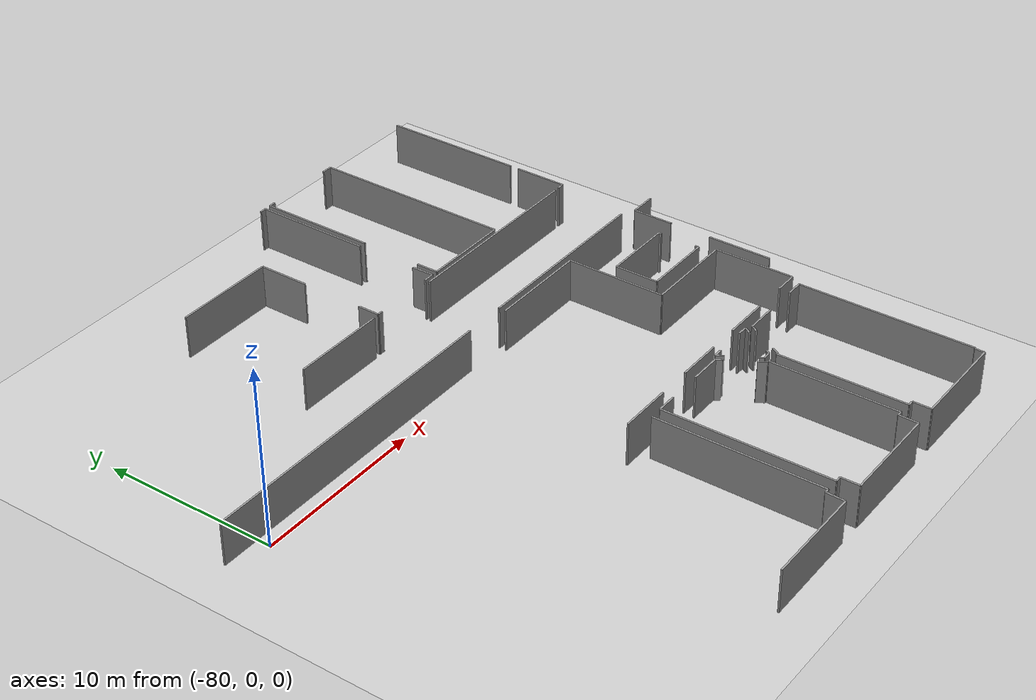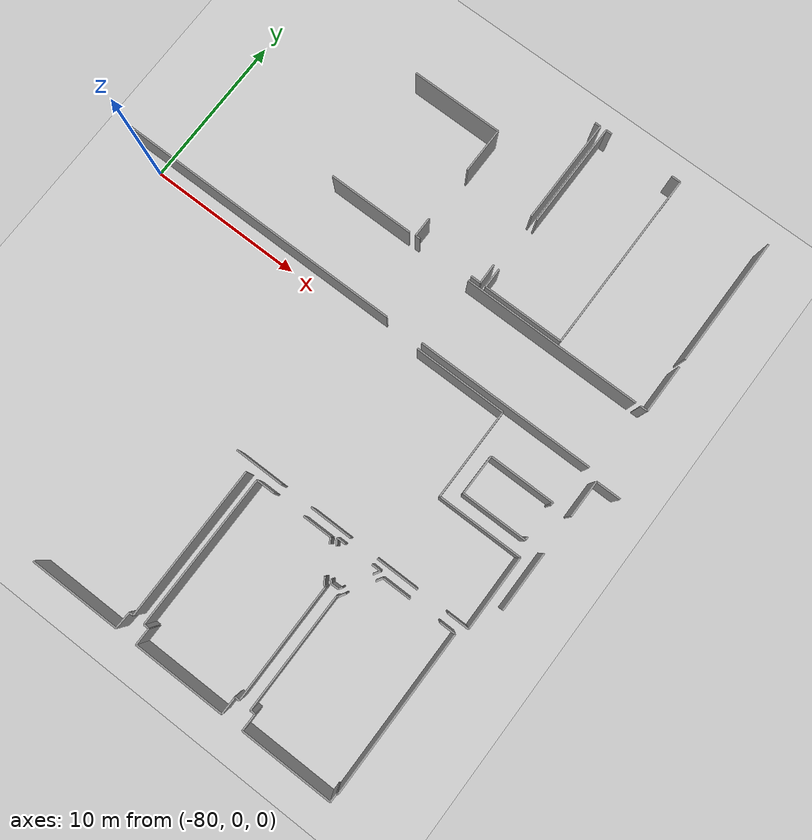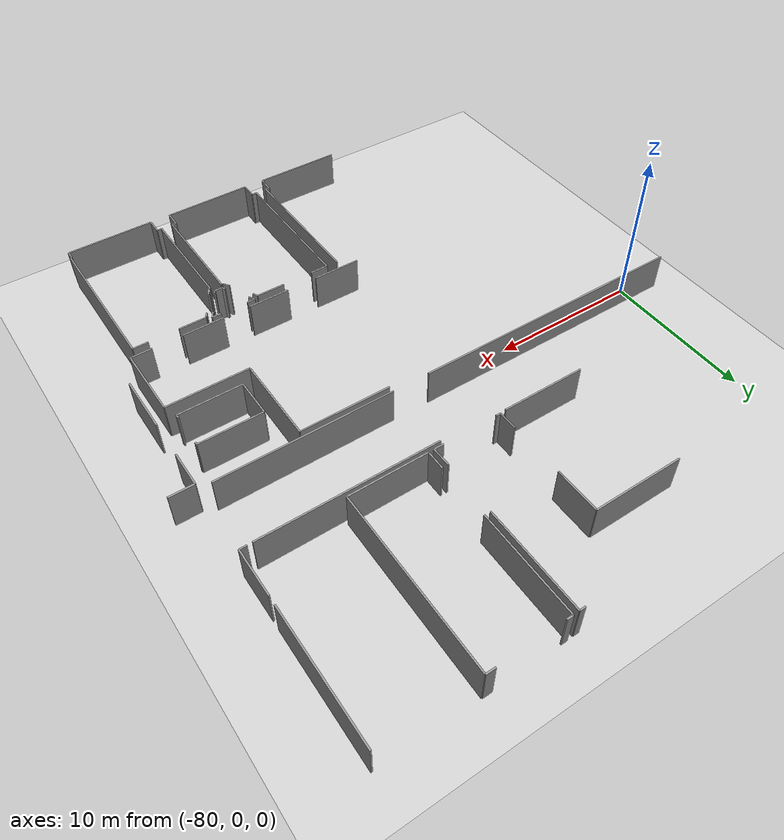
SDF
<sdf version="1.6">
 <world name="default">
  <model name="ground_plane">
   <static>1</static>
   <link name="link">
    <collision name="collision">
     <geometry><plane><normal>0 0 1</normal><size>100 100</size></plane></geometry>
     <surface><friction><ode><mu>100</mu><mu2>50</mu2></ode></friction></surface>
    </collision>
    <visual name="visual">
     <cast_shadows>0</cast_shadows>
     <geometry><plane><normal>0 0 1</normal><size>100 100</size></plane></geometry>
     <material>
      <script><uri>file://media/materials/scripts/gazebo.material</uri><name>Gazebo/Grey</name></script>
     </material>
    </visual>
   </link>
  </model>
  <model name="50037764_PLAN2">
   <static>1</static>
   <link name="Wall_68">
    <collision name="Wall_68_Collision">
     <geometry><box><size>11.4388123443 0.1 2.5</size></box></geometry>
     <pose>5.71940617215 0 1.25 0 0 0</pose>
    </collision>
    <visual name="Wall_68_Visual">
     <pose>5.71940617215 0 1.25 0 0 0</pose>
     <geometry><box><size>11.4388123443 0.1 2.5</size></box></geometry>
     <material>
      <script><uri>file://media/materials/scripts/gazebo.material</uri><name>Gazebo/Grey</name></script>
      <ambient>1 1 1 1</ambient>
     </material>
    </visual>
    <pose>86.1705729829 -20.5119731557 0 0 0 3.14159265359</pose>
   </link>
   <link name="Wall_69">
    <collision name="Wall_69_Collision">
     <geometry><box><size>18.6842239056 0.1 2.5</size></box></geometry>
     <pose>9.34211195282 0 1.25 0 0 0</pose>
    </collision>
    <visual name="Wall_69_Visual">
     <pose>9.34211195282 0 1.25 0 0 0</pose>
     <geometry><box><size>18.6842239056 0.1 2.5</size></box></geometry>
     <material>
      <script><uri>file://media/materials/scripts/gazebo.material</uri><name>Gazebo/Grey</name></script>
      <ambient>1 1 1 1</ambient>
     </material>
    </visual>
    <pose>72.2781534394 -20.5119731557 0 0 0 3.14159265359</pose>
   </link>
   <link name="Wall_73">
    <collision name="Wall_73_Collision">
     <geometry><box><size>11.5099903401 0.1 2.5</size></box></geometry>
     <pose>5.75499517006 0 1.25 0 0 0</pose>
    </collision>
    <visual name="Wall_73_Visual">
     <pose>5.75499517006 0 1.25 0 0 0</pose>
     <geometry><box><size>11.5099903401 0.1 2.5</size></box></geometry>
     <material>
      <script><uri>file://media/materials/scripts/gazebo.material</uri><name>Gazebo/Grey</name></script>
      <ambient>1 1 1 1</ambient>
     </material>
    </visual>
    <pose>74.6328740658 -16.0676699375 0 0 0 0.0</pose>
   </link>
   <link name="Wall_102">
    <collision name="Wall_102_Collision">
     <geometry><box><size>1.37297269815 0.1 2.5</size></box></geometry>
     <pose>0.686486349077 0 1.25 0 0 0</pose>
    </collision>
    <visual name="Wall_102_Visual">
     <pose>0.686486349077 0 1.25 0 0 0</pose>
     <geometry><box><size>1.37297269815 0.1 2.5</size></box></geometry>
     <material>
      <script><uri>file://media/materials/scripts/gazebo.material</uri><name>Gazebo/Grey</name></script>
      <ambient>1 1 1 1</ambient>
     </material>
    </visual>
    <pose>86.0551629468 -31.3701764197 0 0 0 3.14159265359</pose>
   </link>
   <link name="Wall_103">
    <collision name="Wall_103_Collision">
     <geometry><box><size>2.73170979714 0.1 2.5</size></box></geometry>
     <pose>1.36585489857 0 1.25 0 0 0</pose>
    </collision>
    <visual name="Wall_103_Visual">
     <pose>1.36585489857 0 1.25 0 0 0</pose>
     <geometry><box><size>2.73170979714 0.1 2.5</size></box></geometry>
     <material>
      <script><uri>file://media/materials/scripts/gazebo.material</uri><name>Gazebo/Grey</name></script>
      <ambient>1 1 1 1</ambient>
     </material>
    </visual>
    <pose>82.6734455234 -31.3701764197 0 0 0 3.14159265359</pose>
   </link>
   <link name="Wall_104">
    <collision name="Wall_104_Collision">
     <geometry><box><size>2.70450963445 0.1 2.5</size></box></geometry>
     <pose>1.35225481723 0 1.25 0 0 0</pose>
    </collision>
    <visual name="Wall_104_Visual">
     <pose>1.35225481723 0 1.25 0 0 0</pose>
     <geometry><box><size>2.70450963445 0.1 2.5</size></box></geometry>
     <material>
      <script><uri>file://media/materials/scripts/gazebo.material</uri><name>Gazebo/Grey</name></script>
      <ambient>1 1 1 1</ambient>
     </material>
    </visual>
    <pose>78.133560425 -31.3701764197 0 0 0 3.14159265359</pose>
   </link>
   <link name="Wall_105">
    <collision name="Wall_105_Collision">
     <geometry><box><size>3.11886725304 0.1 2.5</size></box></geometry>
     <pose>1.55943362652 0 1.25 0 0 0</pose>
    </collision>
    <visual name="Wall_105_Visual">
     <pose>1.55943362652 0 1.25 0 0 0</pose>
     <geometry><box><size>3.11886725304 0.1 2.5</size></box></geometry>
     <material>
      <script><uri>file://media/materials/scripts/gazebo.material</uri><name>Gazebo/Grey</name></script>
      <ambient>1 1 1 1</ambient>
     </material>
    </visual>
    <pose>73.4126798515 -31.3701764197 0 0 0 3.14159265359</pose>
   </link>
   <link name="Wall_117">
    <collision name="Wall_117_Collision">
     <geometry><box><size>5.90141847577 0.1 2.5</size></box></geometry>
     <pose>2.95070923789 0 1.25 0 0 0</pose>
    </collision>
    <visual name="Wall_117_Visual">
     <pose>2.95070923789 0 1.25 0 0 0</pose>
     <geometry><box><size>5.90141847577 0.1 2.5</size></box></geometry>
     <material>
      <script><uri>file://media/materials/scripts/gazebo.material</uri><name>Gazebo/Grey</name></script>
      <ambient>1 1 1 1</ambient>
     </material>
    </visual>
    <pose>74.724642839 -20.9133662108 0 0 0 0.0</pose>
   </link>
   <link name="Wall_118">
    <collision name="Wall_118_Collision">
     <geometry><box><size>5.77939905435 0.1 2.5</size></box></geometry>
     <pose>2.88969952717 0 1.25 0 0 0</pose>
    </collision>
    <visual name="Wall_118_Visual">
     <pose>2.88969952717 0 1.25 0 0 0</pose>
     <geometry><box><size>5.77939905435 0.1 2.5</size></box></geometry>
     <material>
      <script><uri>file://media/materials/scripts/gazebo.material</uri><name>Gazebo/Grey</name></script>
      <ambient>1 1 1 1</ambient>
     </material>
    </visual>
    <pose>80.6260613148 -20.9133662108 0 0 0 -1.57079632679</pose>
   </link>
   <link name="Wall_119">
    <collision name="Wall_119_Collision">
     <geometry><box><size>5.4107987188 0.1 2.5</size></box></geometry>
     <pose>2.7053993594 0 1.25 0 0 0</pose>
    </collision>
    <visual name="Wall_119_Visual">
     <pose>2.7053993594 0 1.25 0 0 0</pose>
     <geometry><box><size>5.4107987188 0.1 2.5</size></box></geometry>
     <material>
      <script><uri>file://media/materials/scripts/gazebo.material</uri><name>Gazebo/Grey</name></script>
      <ambient>1 1 1 1</ambient>
     </material>
    </visual>
    <pose>80.6260613148 -26.6927652651 0 0 0 0.0</pose>
   </link>
   <link name="Wall_120">
    <collision name="Wall_120_Collision">
     <geometry><box><size>4.67744696452 0.1 2.5</size></box></geometry>
     <pose>2.33872348226 0 1.25 0 0 0</pose>
    </collision>
    <visual name="Wall_120_Visual">
     <pose>2.33872348226 0 1.25 0 0 0</pose>
     <geometry><box><size>4.67744696452 0.1 2.5</size></box></geometry>
     <material>
      <script><uri>file://media/materials/scripts/gazebo.material</uri><name>Gazebo/Grey</name></script>
      <ambient>1 1 1 1</ambient>
     </material>
    </visual>
    <pose>86.0368600336 -26.6927652651 0 0 0 -1.56688330329</pose>
   </link>
   <link name="Wall_121">
    <collision name="Wall_121_Collision">
     <geometry><box><size>0.643652448015 0.1 2.5</size></box></geometry>
     <pose>0.321826224007 0 1.25 0 0 0</pose>
    </collision>
    <visual name="Wall_121_Visual">
     <pose>0.321826224007 0 1.25 0 0 0</pose>
     <geometry><box><size>0.643652448015 0.1 2.5</size></box></geometry>
     <material>
      <script><uri>file://media/materials/scripts/gazebo.material</uri><name>Gazebo/Grey</name></script>
      <ambient>1 1 1 1</ambient>
     </material>
    </visual>
    <pose>75.2744928568 -15.78102598 0 0 0 3.14159265359</pose>
   </link>
   <link name="Wall_122">
    <collision name="Wall_122_Collision">
     <geometry><box><size>0.317504702832 0.1 2.5</size></box></geometry>
     <pose>0.158752351416 0 1.25 0 0 0</pose>
    </collision>
    <visual name="Wall_122_Visual">
     <pose>0.158752351416 0 1.25 0 0 0</pose>
     <geometry><box><size>0.317504702832 0.1 2.5</size></box></geometry>
     <material>
      <script><uri>file://media/materials/scripts/gazebo.material</uri><name>Gazebo/Grey</name></script>
      <ambient>1 1 1 1</ambient>
     </material>
    </visual>
    <pose>71.0289796126 -15.78102598 0 0 0 3.14159265359</pose>
   </link>
   <link name="Wall_123">
    <collision name="Wall_123_Collision">
     <geometry><box><size>1.27032385988 0.1 2.5</size></box></geometry>
     <pose>0.635161929941 0 1.25 0 0 0</pose>
    </collision>
    <visual name="Wall_123_Visual">
     <pose>0.635161929941 0 1.25 0 0 0</pose>
     <geometry><box><size>1.27032385988 0.1 2.5</size></box></geometry>
     <material>
      <script><uri>file://media/materials/scripts/gazebo.material</uri><name>Gazebo/Grey</name></script>
      <ambient>1 1 1 1</ambient>
     </material>
    </visual>
    <pose>70.7114749098 -15.78102598 0 0 0 1.57079632679</pose>
   </link>
   <link name="Wall_124">
    <collision name="Wall_124_Collision">
     <geometry><box><size>2.95048045147 0.1 2.5</size></box></geometry>
     <pose>1.47524022574 0 1.25 0 0 0</pose>
    </collision>
    <visual name="Wall_124_Visual">
     <pose>1.47524022574 0 1.25 0 0 0</pose>
     <geometry><box><size>2.95048045147 0.1 2.5</size></box></geometry>
     <material>
      <script><uri>file://media/materials/scripts/gazebo.material</uri><name>Gazebo/Grey</name></script>
      <ambient>1 1 1 1</ambient>
     </material>
    </visual>
    <pose>70.7114749098 -10.8793024556 0 0 0 1.57079632679</pose>
   </link>
   <link name="Wall_125">
    <collision name="Wall_125_Collision">
     <geometry><box><size>5.91845035335 0.1 2.5</size></box></geometry>
     <pose>2.95922517667 0 1.25 0 0 0</pose>
    </collision>
    <visual name="Wall_125_Visual">
     <pose>2.95922517667 0 1.25 0 0 0</pose>
     <geometry><box><size>5.91845035335 0.1 2.5</size></box></geometry>
     <material>
      <script><uri>file://media/materials/scripts/gazebo.material</uri><name>Gazebo/Grey</name></script>
      <ambient>1 1 1 1</ambient>
     </material>
    </visual>
    <pose>70.7114749098 -7.92882200417 0 0 0 3.14159265359</pose>
   </link>
   <link name="Wall_129">
    <collision name="Wall_129_Collision">
     <geometry><box><size>0.375718135137 0.1 2.5</size></box></geometry>
     <pose>0.187859067568 0 1.25 0 0 0</pose>
    </collision>
    <visual name="Wall_129_Visual">
     <pose>0.187859067568 0 1.25 0 0 0</pose>
     <geometry><box><size>0.375718135137 0.1 2.5</size></box></geometry>
     <material>
      <script><uri>file://media/materials/scripts/gazebo.material</uri><name>Gazebo/Grey</name></script>
      <ambient>1 1 1 1</ambient>
     </material>
    </visual>
    <pose>74.8690324877 -4.13272154151 0 0 0 0.0</pose>
   </link>
   <link name="Wall_130">
    <collision name="Wall_130_Collision">
     <geometry><box><size>6.75852864914 0.1 2.5</size></box></geometry>
     <pose>3.37926432457 0 1.25 0 0 0</pose>
    </collision>
    <visual name="Wall_130_Visual">
     <pose>3.37926432457 0 1.25 0 0 0</pose>
     <geometry><box><size>6.75852864914 0.1 2.5</size></box></geometry>
     <material>
      <script><uri>file://media/materials/scripts/gazebo.material</uri><name>Gazebo/Grey</name></script>
      <ambient>1 1 1 1</ambient>
     </material>
    </visual>
    <pose>75.2447506228 -4.13272154151 0 0 0 -1.57079632679</pose>
   </link>
   <link name="Wall_131">
    <collision name="Wall_131_Collision">
     <geometry><box><size>1.29753447554 0.1 2.5</size></box></geometry>
     <pose>0.648767237772 0 1.25 0 0 0</pose>
    </collision>
    <visual name="Wall_131_Visual">
     <pose>0.648767237772 0 1.25 0 0 0</pose>
     <geometry><box><size>1.29753447554 0.1 2.5</size></box></geometry>
     <material>
      <script><uri>file://media/materials/scripts/gazebo.material</uri><name>Gazebo/Grey</name></script>
      <ambient>1 1 1 1</ambient>
     </material>
    </visual>
    <pose>75.2447506228 -14.4838324267 0 0 0 -1.5478722044</pose>
   </link>
   <link name="Wall_132">
    <collision name="Wall_132_Collision">
     <geometry><box><size>5.53891911129 0.1 2.5</size></box></geometry>
     <pose>2.76945955565 0 1.25 0 0 0</pose>
    </collision>
    <visual name="Wall_132_Visual">
     <pose>2.76945955565 0 1.25 0 0 0</pose>
     <geometry><box><size>5.53891911129 0.1 2.5</size></box></geometry>
     <material>
      <script><uri>file://media/materials/scripts/gazebo.material</uri><name>Gazebo/Grey</name></script>
      <ambient>1 1 1 1</ambient>
     </material>
    </visual>
    <pose>70.3171996543 -15.8301133764 0 0 0 3.14159265359</pose>
   </link>
   <link name="Wall_137">
    <collision name="Wall_137_Collision">
     <geometry><box><size>5.1754029183 0.1 2.5</size></box></geometry>
     <pose>2.58770145915 0 1.25 0 0 0</pose>
    </collision>
    <visual name="Wall_137_Visual">
     <pose>2.58770145915 0 1.25 0 0 0</pose>
     <geometry><box><size>5.1754029183 0.1 2.5</size></box></geometry>
     <material>
      <script><uri>file://media/materials/scripts/gazebo.material</uri><name>Gazebo/Grey</name></script>
      <ambient>1 1 1 1</ambient>
     </material>
    </visual>
    <pose>80.8126493467 -15.7751537953 0 0 0 3.14159265359</pose>
   </link>
   <link name="Wall_138">
    <collision name="Wall_138_Collision">
     <geometry><box><size>1.27146779196 0.1 2.5</size></box></geometry>
     <pose>0.635733895978 0 1.25 0 0 0</pose>
    </collision>
    <visual name="Wall_138_Visual">
     <pose>0.635733895978 0 1.25 0 0 0</pose>
     <geometry><box><size>1.27146779196 0.1 2.5</size></box></geometry>
     <material>
      <script><uri>file://media/materials/scripts/gazebo.material</uri><name>Gazebo/Grey</name></script>
      <ambient>1 1 1 1</ambient>
     </material>
    </visual>
    <pose>75.6372464284 -15.7751537953 0 0 0 1.57079632679</pose>
   </link>
   <link name="Wall_139">
    <collision name="Wall_139_Collision">
     <geometry><box><size>6.78760994458 0.1 2.5</size></box></geometry>
     <pose>3.39380497229 0 1.25 0 0 0</pose>
    </collision>
    <visual name="Wall_139_Visual">
     <pose>3.39380497229 0 1.25 0 0 0</pose>
     <geometry><box><size>6.78760994458 0.1 2.5</size></box></geometry>
     <material>
      <script><uri>file://media/materials/scripts/gazebo.material</uri><name>Gazebo/Grey</name></script>
      <ambient>1 1 1 1</ambient>
     </material>
    </visual>
    <pose>75.6372464284 -10.9003762265 0 0 0 1.57079632679</pose>
   </link>
   <link name="Wall_140">
    <collision name="Wall_140_Collision">
     <geometry><box><size>0.39529208399 0.1 2.5</size></box></geometry>
     <pose>0.197646041995 0 1.25 0 0 0</pose>
    </collision>
    <visual name="Wall_140_Visual">
     <pose>0.197646041995 0 1.25 0 0 0</pose>
     <geometry><box><size>0.39529208399 0.1 2.5</size></box></geometry>
     <material>
      <script><uri>file://media/materials/scripts/gazebo.material</uri><name>Gazebo/Grey</name></script>
      <ambient>1 1 1 1</ambient>
     </material>
    </visual>
    <pose>75.6372464284 -4.11276628197 0 0 0 0.0</pose>
   </link>
   <link name="Wall_141">
    <collision name="Wall_141_Collision">
     <geometry><box><size>0.599674614876 0.1 2.5</size></box></geometry>
     <pose>0.299837307438 0 1.25 0 0 0</pose>
    </collision>
    <visual name="Wall_141_Visual">
     <pose>0.299837307438 0 1.25 0 0 0</pose>
     <geometry><box><size>0.599674614876 0.1 2.5</size></box></geometry>
     <material>
      <script><uri>file://media/materials/scripts/gazebo.material</uri><name>Gazebo/Grey</name></script>
      <ambient>1 1 1 1</ambient>
     </material>
    </visual>
    <pose>80.2310234379 -4.11276628197 0 0 0 0.0</pose>
   </link>
   <link name="Wall_142">
    <collision name="Wall_142_Collision">
     <geometry><box><size>11.6624014794 0.1 2.5</size></box></geometry>
     <pose>5.83120073971 0 1.25 0 0 0</pose>
    </collision>
    <visual name="Wall_142_Visual">
     <pose>5.83120073971 0 1.25 0 0 0</pose>
     <geometry><box><size>11.6624014794 0.1 2.5</size></box></geometry>
     <material>
      <script><uri>file://media/materials/scripts/gazebo.material</uri><name>Gazebo/Grey</name></script>
      <ambient>1 1 1 1</ambient>
     </material>
    </visual>
    <pose>80.8306980528 -4.11276628197 0 0 0 -1.57234392515</pose>
   </link>
   <link name="Wall_150">
    <collision name="Wall_150_Collision">
     <geometry><box><size>0.497068807409 0.1 2.5</size></box></geometry>
     <pose>0.248534403705 0 1.25 0 0 0</pose>
    </collision>
    <visual name="Wall_150_Visual">
     <pose>0.248534403705 0 1.25 0 0 0</pose>
     <geometry><box><size>0.497068807409 0.1 2.5</size></box></geometry>
     <material>
      <script><uri>file://media/materials/scripts/gazebo.material</uri><name>Gazebo/Grey</name></script>
      <ambient>1 1 1 1</ambient>
     </material>
    </visual>
    <pose>79.2802887793 -33.9005541715 0 0 0 -3.12215776076</pose>
   </link>
   <link name="Wall_151">
    <collision name="Wall_151_Collision">
     <geometry><box><size>0.244101459801 0.1 2.5</size></box></geometry>
     <pose>0.122050729901 0 1.25 0 0 0</pose>
    </collision>
    <visual name="Wall_151_Visual">
     <pose>0.122050729901 0 1.25 0 0 0</pose>
     <geometry><box><size>0.244101459801 0.1 2.5</size></box></geometry>
     <material>
      <script><uri>file://media/materials/scripts/gazebo.material</uri><name>Gazebo/Grey</name></script>
      <ambient>1 1 1 1</ambient>
     </material>
    </visual>
    <pose>78.7833138441 -33.9102140424 0 0 0 2.10389322175</pose>
   </link>
   <link name="Wall_152">
    <collision name="Wall_152_Collision">
     <geometry><box><size>0.45085882679 0.1 2.5</size></box></geometry>
     <pose>0.225429413395 0 1.25 0 0 0</pose>
    </collision>
    <visual name="Wall_152_Visual">
     <pose>0.225429413395 0 1.25 0 0 0</pose>
     <geometry><box><size>0.45085882679 0.1 2.5</size></box></geometry>
     <material>
      <script><uri>file://media/materials/scripts/gazebo.material</uri><name>Gazebo/Grey</name></script>
      <ambient>1 1 1 1</ambient>
     </material>
    </visual>
    <pose>77.7990238446 -32.1899944074 0 0 0 2.12939564214</pose>
   </link>
   <link name="Wall_153">
    <collision name="Wall_153_Collision">
     <geometry><box><size>0.535442828477 0.1 2.5</size></box></geometry>
     <pose>0.267721414239 0 1.25 0 0 0</pose>
    </collision>
    <visual name="Wall_153_Visual">
     <pose>0.267721414239 0 1.25 0 0 0</pose>
     <geometry><box><size>0.535442828477 0.1 2.5</size></box></geometry>
     <material>
      <script><uri>file://media/materials/scripts/gazebo.material</uri><name>Gazebo/Grey</name></script>
      <ambient>1 1 1 1</ambient>
     </material>
    </visual>
    <pose>77.5600691443 -31.807666887 0 0 0 0.0175670436099</pose>
   </link>
   <link name="Wall_154">
    <collision name="Wall_154_Collision">
     <geometry><box><size>0.601459436834 0.1 2.5</size></box></geometry>
     <pose>0.300729718417 0 1.25 0 0 0</pose>
    </collision>
    <visual name="Wall_154_Visual">
     <pose>0.300729718417 0 1.25 0 0 0</pose>
     <geometry><box><size>0.601459436834 0.1 2.5</size></box></geometry>
     <material>
      <script><uri>file://media/materials/scripts/gazebo.material</uri><name>Gazebo/Grey</name></script>
      <ambient>1 1 1 1</ambient>
     </material>
    </visual>
    <pose>79.9112308709 -31.7886013524 0 0 0 -0.00422651752117</pose>
   </link>
   <link name="Wall_155">
    <collision name="Wall_155_Collision">
     <geometry><box><size>0.467302402422 0.1 2.5</size></box></geometry>
     <pose>0.233651201211 0 1.25 0 0 0</pose>
    </collision>
    <visual name="Wall_155_Visual">
     <pose>0.233651201211 0 1.25 0 0 0</pose>
     <geometry><box><size>0.467302402422 0.1 2.5</size></box></geometry>
     <material>
      <script><uri>file://media/materials/scripts/gazebo.material</uri><name>Gazebo/Grey</name></script>
      <ambient>1 1 1 1</ambient>
     </material>
    </visual>
    <pose>80.5126849357 -31.7911434237 0 0 0 -2.12409065212</pose>
   </link>
   <link name="Wall_156">
    <collision name="Wall_156_Collision">
     <geometry><box><size>0.244446954201 0.1 2.5</size></box></geometry>
     <pose>0.122223477101 0 1.25 0 0 0</pose>
    </collision>
    <visual name="Wall_156_Visual">
     <pose>0.122223477101 0 1.25 0 0 0</pose>
     <geometry><box><size>0.244446954201 0.1 2.5</size></box></geometry>
     <material>
      <script><uri>file://media/materials/scripts/gazebo.material</uri><name>Gazebo/Grey</name></script>
      <ambient>1 1 1 1</ambient>
     </material>
    </visual>
    <pose>79.4071381362 -33.6915959123 0 0 0 -2.11638788724</pose>
   </link>
   <link name="Wall_169">
    <collision name="Wall_169_Collision">
     <geometry><box><size>5.79338044639 0.1 2.5</size></box></geometry>
     <pose>2.89669022319 0 1.25 0 0 0</pose>
    </collision>
    <visual name="Wall_169_Visual">
     <pose>2.89669022319 0 1.25 0 0 0</pose>
     <geometry><box><size>5.79338044639 0.1 2.5</size></box></geometry>
     <material>
      <script><uri>file://media/materials/scripts/gazebo.material</uri><name>Gazebo/Grey</name></script>
      <ambient>1 1 1 1</ambient>
     </material>
    </visual>
    <pose>71.1375260562 -42.6389241954 0 0 0 3.14159265359</pose>
   </link>
   <link name="Wall_177">
    <collision name="Wall_177_Collision">
     <geometry><box><size>9.59148914536 0.1 2.5</size></box></geometry>
     <pose>4.79574457268 0 1.25 0 0 0</pose>
    </collision>
    <visual name="Wall_177_Visual">
     <pose>4.79574457268 0 1.25 0 0 0</pose>
     <geometry><box><size>9.59148914536 0.1 2.5</size></box></geometry>
     <material>
      <script><uri>file://media/materials/scripts/gazebo.material</uri><name>Gazebo/Grey</name></script>
      <ambient>1 1 1 1</ambient>
     </material>
    </visual>
    <pose>71.4438456454 -31.9863744979 0 0 0 -1.57079632679</pose>
   </link>
   <link name="Wall_178">
    <collision name="Wall_178_Collision">
     <geometry><box><size>0.260816513295 0.1 2.5</size></box></geometry>
     <pose>0.130408256648 0 1.25 0 0 0</pose>
    </collision>
    <visual name="Wall_178_Visual">
     <pose>0.130408256648 0 1.25 0 0 0</pose>
     <geometry><box><size>0.260816513295 0.1 2.5</size></box></geometry>
     <material>
      <script><uri>file://media/materials/scripts/gazebo.material</uri><name>Gazebo/Grey</name></script>
      <ambient>1 1 1 1</ambient>
     </material>
    </visual>
    <pose>71.4438456454 -41.5778636433 0 0 0 3.14159265359</pose>
   </link>
   <link name="Wall_179">
    <collision name="Wall_179_Collision">
     <geometry><box><size>1.06203579281 0.1 2.5</size></box></geometry>
     <pose>0.531017896407 0 1.25 0 0 0</pose>
    </collision>
    <visual name="Wall_179_Visual">
     <pose>0.531017896407 0 1.25 0 0 0</pose>
     <geometry><box><size>1.06203579281 0.1 2.5</size></box></geometry>
     <material>
      <script><uri>file://media/materials/scripts/gazebo.material</uri><name>Gazebo/Grey</name></script>
      <ambient>1 1 1 1</ambient>
     </material>
    </visual>
    <pose>71.1830291321 -41.5778636433 0 0 0 -1.61365458962</pose>
   </link>
   <link name="Wall_180">
    <collision name="Wall_180_Collision">
     <geometry><box><size>5.83024047994 0.1 2.5</size></box></geometry>
     <pose>2.91512023997 0 1.25 0 0 0</pose>
    </collision>
    <visual name="Wall_180_Visual">
     <pose>2.91512023997 0 1.25 0 0 0</pose>
     <geometry><box><size>5.83024047994 0.1 2.5</size></box></geometry>
     <material>
      <script><uri>file://media/materials/scripts/gazebo.material</uri><name>Gazebo/Grey</name></script>
      <ambient>1 1 1 1</ambient>
     </material>
    </visual>
    <pose>78.3628552545 -42.6544308302 0 0 0 3.14159265359</pose>
   </link>
   <link name="Wall_181">
    <collision name="Wall_181_Collision">
     <geometry><box><size>1.05851848086 0.1 2.5</size></box></geometry>
     <pose>0.529259240429 0 1.25 0 0 0</pose>
    </collision>
    <visual name="Wall_181_Visual">
     <pose>0.529259240429 0 1.25 0 0 0</pose>
     <geometry><box><size>1.05851848086 0.1 2.5</size></box></geometry>
     <material>
      <script><uri>file://media/materials/scripts/gazebo.material</uri><name>Gazebo/Grey</name></script>
      <ambient>1 1 1 1</ambient>
     </material>
    </visual>
    <pose>72.5326147745 -42.6544308302 0 0 0 1.57079632679</pose>
   </link>
   <link name="Wall_182">
    <collision name="Wall_182_Collision">
     <geometry><box><size>0.339366515837 0.1 2.5</size></box></geometry>
     <pose>0.169683257919 0 1.25 0 0 0</pose>
    </collision>
    <visual name="Wall_182_Visual">
     <pose>0.169683257919 0 1.25 0 0 0</pose>
     <geometry><box><size>0.339366515837 0.1 2.5</size></box></geometry>
     <material>
      <script><uri>file://media/materials/scripts/gazebo.material</uri><name>Gazebo/Grey</name></script>
      <ambient>1 1 1 1</ambient>
     </material>
    </visual>
    <pose>72.5326147745 -41.5959123494 0 0 0 3.14159265359</pose>
   </link>
   <link name="Wall_183">
    <collision name="Wall_183_Collision">
     <geometry><box><size>9.60674157303 0.1 2.5</size></box></geometry>
     <pose>4.80337078652 0 1.25 0 0 0</pose>
    </collision>
    <visual name="Wall_183_Visual">
     <pose>4.80337078652 0 1.25 0 0 0</pose>
     <geometry><box><size>9.60674157303 0.1 2.5</size></box></geometry>
     <material>
      <script><uri>file://media/materials/scripts/gazebo.material</uri><name>Gazebo/Grey</name></script>
      <ambient>1 1 1 1</ambient>
     </material>
    </visual>
    <pose>72.1932482587 -41.5959123494 0 0 0 1.57079632679</pose>
   </link>
   <link name="Wall_184">
    <collision name="Wall_184_Collision">
     <geometry><box><size>1.17240327419 0.1 2.5</size></box></geometry>
     <pose>0.586201637094 0 1.25 0 0 0</pose>
    </collision>
    <visual name="Wall_184_Visual">
     <pose>0.586201637094 0 1.25 0 0 0</pose>
     <geometry><box><size>1.17240327419 0.1 2.5</size></box></geometry>
     <material>
      <script><uri>file://media/materials/scripts/gazebo.material</uri><name>Gazebo/Grey</name></script>
      <ambient>1 1 1 1</ambient>
     </material>
    </visual>
    <pose>72.1932482587 -31.9891707763 0 0 0 0.0</pose>
   </link>
   <link name="Wall_185">
    <collision name="Wall_185_Collision">
     <geometry><box><size>1.87554019015 0.1 2.5</size></box></geometry>
     <pose>0.937770095073 0 1.25 0 0 0</pose>
    </collision>
    <visual name="Wall_185_Visual">
     <pose>0.937770095073 0 1.25 0 0 0</pose>
     <geometry><box><size>1.87554019015 0.1 2.5</size></box></geometry>
     <material>
      <script><uri>file://media/materials/scripts/gazebo.material</uri><name>Gazebo/Grey</name></script>
      <ambient>1 1 1 1</ambient>
     </material>
    </visual>
    <pose>75.3901571 -31.9891707763 0 0 0 0.0</pose>
   </link>
   <link name="Wall_186">
    <collision name="Wall_186_Collision">
     <geometry><box><size>0.369707104682 0.1 2.5</size></box></geometry>
     <pose>0.184853552341 0 1.25 0 0 0</pose>
    </collision>
    <visual name="Wall_186_Visual">
     <pose>0.184853552341 0 1.25 0 0 0</pose>
     <geometry><box><size>0.369707104682 0.1 2.5</size></box></geometry>
     <material>
      <script><uri>file://media/materials/scripts/gazebo.material</uri><name>Gazebo/Grey</name></script>
      <ambient>1 1 1 1</ambient>
     </material>
    </visual>
    <pose>77.2656972902 -31.9891707763 0 0 0 -1.08193105641</pose>
   </link>
   <link name="Wall_187">
    <collision name="Wall_187_Collision">
     <geometry><box><size>0.503761631162 0.1 2.5</size></box></geometry>
     <pose>0.251880815581 0 1.25 0 0 0</pose>
    </collision>
    <visual name="Wall_187_Visual">
     <pose>0.251880815581 0 1.25 0 0 0</pose>
     <geometry><box><size>0.503761631162 0.1 2.5</size></box></geometry>
     <material>
      <script><uri>file://media/materials/scripts/gazebo.material</uri><name>Gazebo/Grey</name></script>
      <ambient>1 1 1 1</ambient>
     </material>
    </visual>
    <pose>78.2865931161 -33.8049722914 0 0 0 -0.988391985266</pose>
   </link>
   <link name="Wall_188">
    <collision name="Wall_188_Collision">
     <geometry><box><size>0.0983781585236 0.1 2.5</size></box></geometry>
     <pose>0.0491890792618 0 1.25 0 0 0</pose>
    </collision>
    <visual name="Wall_188_Visual">
     <pose>0.0491890792618 0 1.25 0 0 0</pose>
     <geometry><box><size>0.0983781585236 0.1 2.5</size></box></geometry>
     <material>
      <script><uri>file://media/materials/scripts/gazebo.material</uri><name>Gazebo/Grey</name></script>
      <ambient>1 1 1 1</ambient>
     </material>
    </visual>
    <pose>78.5636788856 -34.2256850882 0 0 0 0.0</pose>
   </link>
   <link name="Wall_189">
    <collision name="Wall_189_Collision">
     <geometry><box><size>7.33514667751 0.1 2.5</size></box></geometry>
     <pose>3.66757333876 0 1.25 0 0 0</pose>
    </collision>
    <visual name="Wall_189_Visual">
     <pose>3.66757333876 0 1.25 0 0 0</pose>
     <geometry><box><size>7.33514667751 0.1 2.5</size></box></geometry>
     <material>
      <script><uri>file://media/materials/scripts/gazebo.material</uri><name>Gazebo/Grey</name></script>
      <ambient>1 1 1 1</ambient>
     </material>
    </visual>
    <pose>78.6620570441 -34.2256850882 0 0 0 -1.57079632679</pose>
   </link>
   <link name="Wall_190">
    <collision name="Wall_190_Collision">
     <geometry><box><size>0.281153083532 0.1 2.5</size></box></geometry>
     <pose>0.140576541766 0 1.25 0 0 0</pose>
    </collision>
    <visual name="Wall_190_Visual">
     <pose>0.140576541766 0 1.25 0 0 0</pose>
     <geometry><box><size>0.281153083532 0.1 2.5</size></box></geometry>
     <material>
      <script><uri>file://media/materials/scripts/gazebo.material</uri><name>Gazebo/Grey</name></script>
      <ambient>1 1 1 1</ambient>
     </material>
    </visual>
    <pose>78.6620570441 -41.5608317657 0 0 0 3.14159265359</pose>
   </link>
   <link name="Wall_191">
    <collision name="Wall_191_Collision">
     <geometry><box><size>1.09374799186 0.1 2.5</size></box></geometry>
     <pose>0.546873995932 0 1.25 0 0 0</pose>
    </collision>
    <visual name="Wall_191_Visual">
     <pose>0.546873995932 0 1.25 0 0 0</pose>
     <geometry><box><size>1.09374799186 0.1 2.5</size></box></geometry>
     <material>
      <script><uri>file://media/materials/scripts/gazebo.material</uri><name>Gazebo/Grey</name></script>
      <ambient>1 1 1 1</ambient>
     </material>
    </visual>
    <pose>78.3809039605 -41.5608317657 0 0 0 -1.58729878024</pose>
   </link>
   <link name="Wall_192">
    <collision name="Wall_192_Collision">
     <geometry><box><size>5.82642737302 0.1 2.5</size></box></geometry>
     <pose>2.91321368651 0 1.25 0 0 0</pose>
    </collision>
    <visual name="Wall_192_Visual">
     <pose>2.91321368651 0 1.25 0 0 0</pose>
     <geometry><box><size>5.82642737302 0.1 2.5</size></box></geometry>
     <material>
      <script><uri>file://media/materials/scripts/gazebo.material</uri><name>Gazebo/Grey</name></script>
      <ambient>1 1 1 1</ambient>
     </material>
    </visual>
    <pose>85.5714067822 -42.6569729015 0 0 0 3.14159265359</pose>
   </link>
   <link name="Wall_193">
    <collision name="Wall_193_Collision">
     <geometry><box><size>1.06080634501 0.1 2.5</size></box></geometry>
     <pose>0.530403172505 0 1.25 0 0 0</pose>
    </collision>
    <visual name="Wall_193_Visual">
     <pose>0.530403172505 0 1.25 0 0 0</pose>
     <geometry><box><size>1.06080634501 0.1 2.5</size></box></geometry>
     <material>
      <script><uri>file://media/materials/scripts/gazebo.material</uri><name>Gazebo/Grey</name></script>
      <ambient>1 1 1 1</ambient>
     </material>
    </visual>
    <pose>79.7449794092 -42.6569729015 0 0 0 1.57079632679</pose>
   </link>
   <link name="Wall_194">
    <collision name="Wall_194_Collision">
     <geometry><box><size>0.316742081448 0.1 2.5</size></box></geometry>
     <pose>0.158371040724 0 1.25 0 0 0</pose>
    </collision>
    <visual name="Wall_194_Visual">
     <pose>0.158371040724 0 1.25 0 0 0</pose>
     <geometry><box><size>0.316742081448 0.1 2.5</size></box></geometry>
     <material>
      <script><uri>file://media/materials/scripts/gazebo.material</uri><name>Gazebo/Grey</name></script>
      <ambient>1 1 1 1</ambient>
     </material>
    </visual>
    <pose>79.7449794092 -41.5961665565 0 0 0 3.14159265359</pose>
   </link>
   <link name="Wall_195">
    <collision name="Wall_195_Collision">
     <geometry><box><size>7.34912806955 0.1 2.5</size></box></geometry>
     <pose>3.67456403478 0 1.25 0 0 0</pose>
    </collision>
    <visual name="Wall_195_Visual">
     <pose>3.67456403478 0 1.25 0 0 0</pose>
     <geometry><box><size>7.34912806955 0.1 2.5</size></box></geometry>
     <material>
      <script><uri>file://media/materials/scripts/gazebo.material</uri><name>Gazebo/Grey</name></script>
      <ambient>1 1 1 1</ambient>
     </material>
    </visual>
    <pose>79.4282373278 -41.5961665565 0 0 0 1.57079632679</pose>
   </link>
   <link name="Wall_196">
    <collision name="Wall_196_Collision">
     <geometry><box><size>0.0929539917168 0.1 2.5</size></box></geometry>
     <pose>0.0464769958584 0 1.25 0 0 0</pose>
    </collision>
    <visual name="Wall_196_Visual">
     <pose>0.0464769958584 0 1.25 0 0 0</pose>
     <geometry><box><size>0.0929539917168 0.1 2.5</size></box></geometry>
     <material>
      <script><uri>file://media/materials/scripts/gazebo.material</uri><name>Gazebo/Grey</name></script>
      <ambient>1 1 1 1</ambient>
     </material>
    </visual>
    <pose>79.4282373278 -34.247038487 0 0 0 0.0602011404824</pose>
   </link>
   <link name="Wall_197">
    <collision name="Wall_197_Collision">
     <geometry><box><size>0.47696634876 0.1 2.5</size></box></geometry>
     <pose>0.23848317438 0 1.25 0 0 0</pose>
    </collision>
    <visual name="Wall_197_Visual">
     <pose>0.23848317438 0 1.25 0 0 0</pose>
     <geometry><box><size>0.47696634876 0.1 2.5</size></box></geometry>
     <material>
      <script><uri>file://media/materials/scripts/gazebo.material</uri><name>Gazebo/Grey</name></script>
      <ambient>1 1 1 1</ambient>
     </material>
    </visual>
    <pose>79.5210229295 -34.2414459301 0 0 0 1.05588103281</pose>
   </link>
   <link name="Wall_198">
    <collision name="Wall_198_Collision">
     <geometry><box><size>0.431053893101 0.1 2.5</size></box></geometry>
     <pose>0.21552694655 0 1.25 0 0 0</pose>
    </collision>
    <visual name="Wall_198_Visual">
     <pose>0.21552694655 0 1.25 0 0 0</pose>
     <geometry><box><size>0.431053893101 0.1 2.5</size></box></geometry>
     <material>
      <script><uri>file://media/materials/scripts/gazebo.material</uri><name>Gazebo/Grey</name></script>
      <ambient>1 1 1 1</ambient>
     </material>
    </visual>
    <pose>80.6141135797 -32.3694646398 0 0 0 1.01338473359</pose>
   </link>
   <link name="Wall_199">
    <collision name="Wall_199_Collision">
     <geometry><box><size>1.80537902283 0.1 2.5</size></box></geometry>
     <pose>0.902689511414 0 1.25 0 0 0</pose>
    </collision>
    <visual name="Wall_199_Visual">
     <pose>0.902689511414 0 1.25 0 0 0</pose>
     <geometry><box><size>1.80537902283 0.1 2.5</size></box></geometry>
     <material>
      <script><uri>file://media/materials/scripts/gazebo.material</uri><name>Gazebo/Grey</name></script>
      <ambient>1 1 1 1</ambient>
     </material>
    </visual>
    <pose>80.8421373735 -32.0036605826 0 0 0 0.0</pose>
   </link>
   <link name="Wall_200">
    <collision name="Wall_200_Collision">
     <geometry><box><size>1.00538919111 0.1 2.5</size></box></geometry>
     <pose>0.502694595556 0 1.25 0 0 0</pose>
    </collision>
    <visual name="Wall_200_Visual">
     <pose>0.502694595556 0 1.25 0 0 0</pose>
     <geometry><box><size>1.00538919111 0.1 2.5</size></box></geometry>
     <material>
      <script><uri>file://media/materials/scripts/gazebo.material</uri><name>Gazebo/Grey</name></script>
      <ambient>1 1 1 1</ambient>
     </material>
    </visual>
    <pose>84.6430423509 -32.0036605826 0 0 0 0.0</pose>
   </link>
   <link name="Wall_201">
    <collision name="Wall_201_Collision">
     <geometry><box><size>10.1146474147 0.1 2.5</size></box></geometry>
     <pose>5.05732370736 0 1.25 0 0 0</pose>
    </collision>
    <visual name="Wall_201_Visual">
     <pose>5.05732370736 0 1.25 0 0 0</pose>
     <geometry><box><size>10.1146474147 0.1 2.5</size></box></geometry>
     <material>
      <script><uri>file://media/materials/scripts/gazebo.material</uri><name>Gazebo/Grey</name></script>
      <ambient>1 1 1 1</ambient>
     </material>
    </visual>
    <pose>85.648431542 -32.0036605826 0 0 0 -1.57079632679</pose>
   </link>
   <link name="Wall_202">
    <collision name="Wall_202_Collision">
     <geometry><box><size>0.0770247597743 0.1 2.5</size></box></geometry>
     <pose>0.0385123798871 0 1.25 0 0 0</pose>
    </collision>
    <visual name="Wall_202_Visual">
     <pose>0.0385123798871 0 1.25 0 0 0</pose>
     <geometry><box><size>0.0770247597743 0.1 2.5</size></box></geometry>
     <material>
      <script><uri>file://media/materials/scripts/gazebo.material</uri><name>Gazebo/Grey</name></script>
      <ambient>1 1 1 1</ambient>
     </material>
    </visual>
    <pose>85.648431542 -42.1183079974 0 0 0 3.14159265359</pose>
   </link>
   <link name="Wall_203">
    <collision name="Wall_203_Collision">
     <geometry><box><size>0.538664904164 0.1 2.5</size></box></geometry>
     <pose>0.269332452082 0 1.25 0 0 0</pose>
    </collision>
    <visual name="Wall_203_Visual">
     <pose>0.269332452082 0 1.25 0 0 0</pose>
     <geometry><box><size>0.538664904164 0.1 2.5</size></box></geometry>
     <material>
      <script><uri>file://media/materials/scripts/gazebo.material</uri><name>Gazebo/Grey</name></script>
      <ambient>1 1 1 1</ambient>
     </material>
    </visual>
    <pose>85.5714067822 -42.1183079974 0 0 0 -1.57079632679</pose>
   </link>
   <link name="Wall_209">
    <collision name="Wall_209_Collision">
     <geometry><box><size>0.451980273527 0.1 2.5</size></box></geometry>
     <pose>0.225990136763 0 1.25 0 0 0</pose>
    </collision>
    <visual name="Wall_209_Visual">
     <pose>0.225990136763 0 1.25 0 0 0</pose>
     <geometry><box><size>0.451980273527 0.1 2.5</size></box></geometry>
     <material>
      <script><uri>file://media/materials/scripts/gazebo.material</uri><name>Gazebo/Grey</name></script>
      <ambient>1 1 1 1</ambient>
     </material>
    </visual>
    <pose>86.4491839951 -16.0609080279 0 0 0 0.0</pose>
   </link>
   <link name="Wall_210">
    <collision name="Wall_210_Collision">
     <geometry><box><size>3.08823529412 0.1 2.5</size></box></geometry>
     <pose>1.54411764706 0 1.25 0 0 0</pose>
    </collision>
    <visual name="Wall_210_Visual">
     <pose>1.54411764706 0 1.25 0 0 0</pose>
     <geometry><box><size>3.08823529412 0.1 2.5</size></box></geometry>
     <material>
      <script><uri>file://media/materials/scripts/gazebo.material</uri><name>Gazebo/Grey</name></script>
      <ambient>1 1 1 1</ambient>
     </material>
    </visual>
    <pose>86.9011642686 -16.0609080279 0 0 0 1.57079632679</pose>
   </link>
   <link name="Wall_214">
    <collision name="Wall_214_Collision">
     <geometry><box><size>8.29780365041 0.1 2.5</size></box></geometry>
     <pose>4.14890182521 0 1.25 0 0 0</pose>
    </collision>
    <visual name="Wall_214_Visual">
     <pose>4.14890182521 0 1.25 0 0 0</pose>
     <geometry><box><size>8.29780365041 0.1 2.5</size></box></geometry>
     <material>
      <script><uri>file://media/materials/scripts/gazebo.material</uri><name>Gazebo/Grey</name></script>
      <ambient>1 1 1 1</ambient>
     </material>
    </visual>
    <pose>86.907773654 -12.4344654024 0 0 0 1.57079632679</pose>
   </link>
   <link name="Wall_216">
    <collision name="Wall_216_Collision">
     <geometry><box><size>3.75158879455 0.1 2.5</size></box></geometry>
     <pose>1.87579439727 0 1.25 0 0 0</pose>
    </collision>
    <visual name="Wall_216_Visual">
     <pose>1.87579439727 0 1.25 0 0 0</pose>
     <geometry><box><size>3.75158879455 0.1 2.5</size></box></geometry>
     <material>
      <script><uri>file://media/materials/scripts/gazebo.material</uri><name>Gazebo/Grey</name></script>
      <ambient>1 1 1 1</ambient>
     </material>
    </visual>
    <pose>86.9222634603 -29.4908231227 0 0 0 1.57079632679</pose>
   </link>
   <link name="Wall_217">
    <collision name="Wall_217_Collision">
     <geometry><box><size>2.36183842595 0.1 2.5</size></box></geometry>
     <pose>1.18091921297 0 1.25 0 0 0</pose>
    </collision>
    <visual name="Wall_217_Visual">
     <pose>1.18091921297 0 1.25 0 0 0</pose>
     <geometry><box><size>2.36183842595 0.1 2.5</size></box></geometry>
     <material>
      <script><uri>file://media/materials/scripts/gazebo.material</uri><name>Gazebo/Grey</name></script>
      <ambient>1 1 1 1</ambient>
     </material>
    </visual>
    <pose>86.9222634603 -23.2703747013 0 0 0 1.57079632679</pose>
   </link>
   <link name="Wall_218">
    <collision name="Wall_218_Collision">
     <geometry><box><size>1.58269357873 0.1 2.5</size></box></geometry>
     <pose>0.791346789364 0 1.25 0 0 0</pose>
    </collision>
    <visual name="Wall_218_Visual">
     <pose>0.791346789364 0 1.25 0 0 0</pose>
     <geometry><box><size>1.58269357873 0.1 2.5</size></box></geometry>
     <material>
      <script><uri>file://media/materials/scripts/gazebo.material</uri><name>Gazebo/Grey</name></script>
      <ambient>1 1 1 1</ambient>
     </material>
    </visual>
    <pose>86.9222634603 -20.9085362754 0 0 0 0.0</pose>
   </link>
   <link name="Wall_221">
    <collision name="Wall_221_Collision">
     <geometry><box><size>4.16518379175 0.1 2.5</size></box></geometry>
     <pose>2.08259189588 0 1.25 0 0 0</pose>
    </collision>
    <visual name="Wall_221_Visual">
     <pose>2.08259189588 0 1.25 0 0 0</pose>
     <geometry><box><size>4.16518379175 0.1 2.5</size></box></geometry>
     <material>
      <script><uri>file://media/materials/scripts/gazebo.material</uri><name>Gazebo/Grey</name></script>
      <ambient>1 1 1 1</ambient>
     </material>
    </visual>
    <pose>85.7142711882 -25.7870252682 0 0 0 3.14159265359</pose>
   </link>
   <link name="Wall_222">
    <collision name="Wall_222_Collision">
     <geometry><box><size>2.52758147338 0.1 2.5</size></box></geometry>
     <pose>1.26379073669 0 1.25 0 0 0</pose>
    </collision>
    <visual name="Wall_222_Visual">
     <pose>1.26379073669 0 1.25 0 0 0</pose>
     <geometry><box><size>2.52758147338 0.1 2.5</size></box></geometry>
     <material>
      <script><uri>file://media/materials/scripts/gazebo.material</uri><name>Gazebo/Grey</name></script>
      <ambient>1 1 1 1</ambient>
     </material>
    </visual>
    <pose>81.5490873964 -25.7870252682 0 0 0 1.57079632679</pose>
   </link>
   <link name="Wall_223">
    <collision name="Wall_223_Collision">
     <geometry><box><size>4.14764349992 0.1 2.5</size></box></geometry>
     <pose>2.07382174996 0 1.25 0 0 0</pose>
    </collision>
    <visual name="Wall_223_Visual">
     <pose>2.07382174996 0 1.25 0 0 0</pose>
     <geometry><box><size>4.14764349992 0.1 2.5</size></box></geometry>
     <material>
      <script><uri>file://media/materials/scripts/gazebo.material</uri><name>Gazebo/Grey</name></script>
      <ambient>1 1 1 1</ambient>
     </material>
    </visual>
    <pose>81.5490873964 -23.2594437948 0 0 0 0.0</pose>
   </link>
   <link name="Wall_224">
    <collision name="Wall_224_Collision">
     <geometry><box><size>0.170572982866 0.1 2.5</size></box></geometry>
     <pose>0.0852864914332 0 1.25 0 0 0</pose>
    </collision>
    <visual name="Wall_224_Visual">
     <pose>0.0852864914332 0 1.25 0 0 0</pose>
     <geometry><box><size>0.170572982866 0.1 2.5</size></box></geometry>
     <material>
      <script><uri>file://media/materials/scripts/gazebo.material</uri><name>Gazebo/Grey</name></script>
      <ambient>1 1 1 1</ambient>
     </material>
    </visual>
    <pose>85.6967308963 -23.2594437948 0 0 0 -1.57079632679</pose>
   </link>
   <link name="Wall_225">
    <collision name="Wall_225_Collision">
     <geometry><box><size>0.218307096242 0.1 2.5</size></box></geometry>
     <pose>0.109153548121 0 1.25 0 0 0</pose>
    </collision>
    <visual name="Wall_225_Visual">
     <pose>0.109153548121 0 1.25 0 0 0</pose>
     <geometry><box><size>0.218307096242 0.1 2.5</size></box></geometry>
     <material>
      <script><uri>file://media/materials/scripts/gazebo.material</uri><name>Gazebo/Grey</name></script>
      <ambient>1 1 1 1</ambient>
     </material>
    </visual>
    <pose>85.6967308963 -25.5694239666 0 0 0 -1.49036275679</pose>
   </link>
   <pose>-135.8 21.3069729015 0 0 0 0</pose>
  </model>
 </world>
</sdf>
